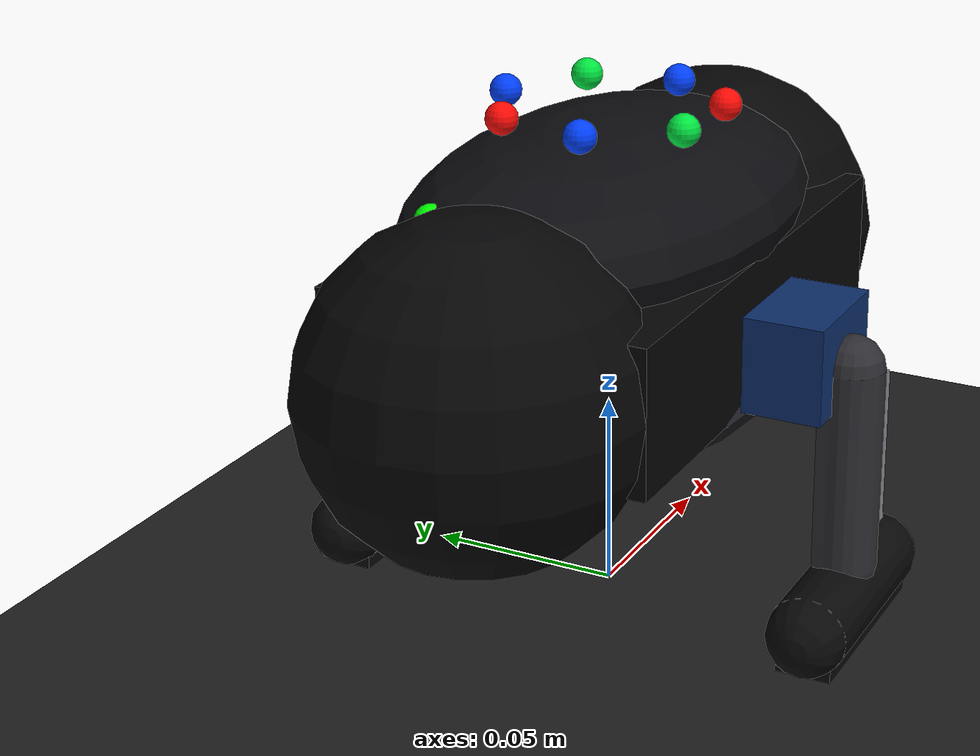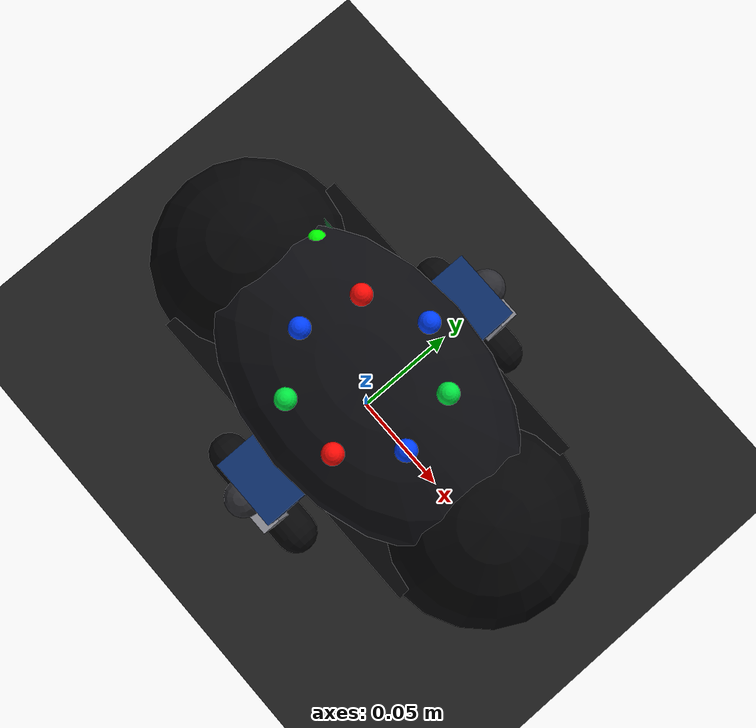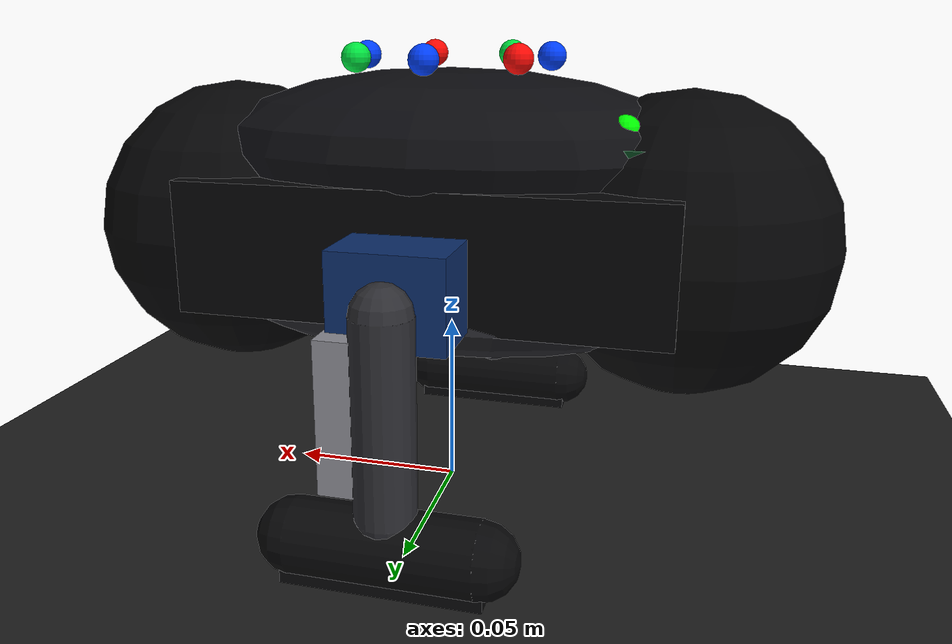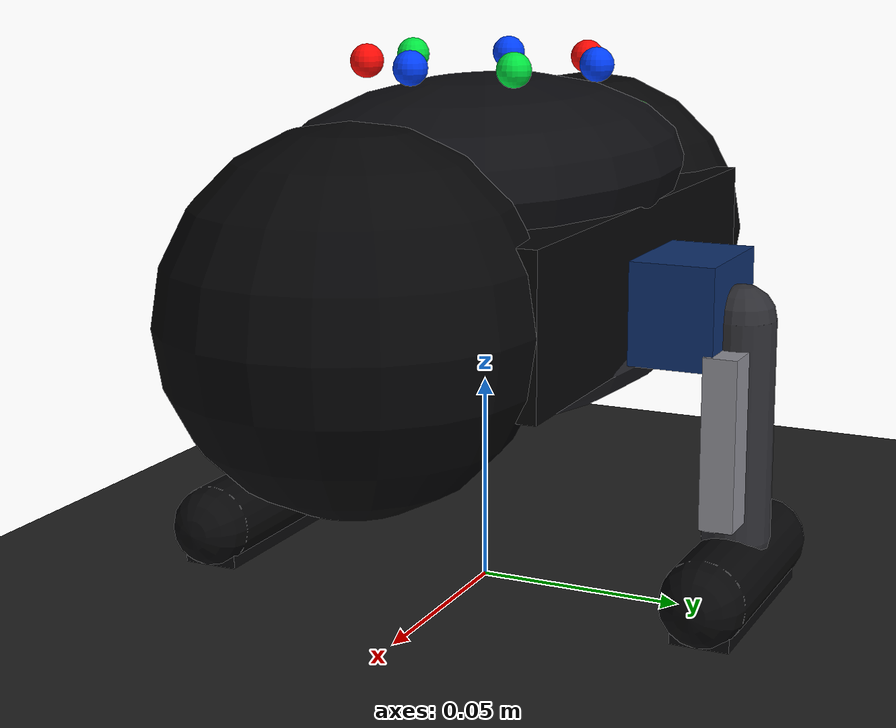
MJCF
<mujoco model="microbot_round_v0">
  <compiler angle="degree" coordinate="local" inertiafromgeom="true"/>

  <option timestep="0.002" gravity="0 0 -9.81" integrator="RK4">
    <flag contact="enable" energy="enable"/>
  </option>

  <size njmax="500" nconmax="100"/>

  <default>
    <geom
      contype="1"
      conaffinity="1"
      condim="3"
      friction="1.2 0.3 0.1"
      solref="0.02 1"
      solimp="0.8 0.8 0.01"
    />

    <joint
      damping="0.06"
      armature="0.003"
      limited="true"
    />

    <motor
      ctrllimited="true"
      ctrlrange="-1 1"
    />
  </default>

  <asset>
    <texture
      name="grid"
      type="2d"
      builtin="checker"
      rgb1="0.08 0.08 0.08"
      rgb2="0.16 0.16 0.16"
      width="512"
      height="512"
    />

    <material
      name="floor_mat"
      texture="grid"
      texrepeat="4 4"
      reflectance="0.15"
    />

    <material name="body_black" rgba="0.02 0.02 0.025 1"/>
    <material name="shell_dark" rgba="0.05 0.05 0.065 1"/>
    <material name="edge_soft" rgba="0.12 0.12 0.14 1"/>
    <material name="servo_blue" rgba="0.05 0.18 0.42 1"/>
    <material name="leg_gray" rgba="0.18 0.18 0.20 1"/>
    <material name="foot_rubber" rgba="0.03 0.03 0.035 1"/>
    <material name="camera_glass" rgba="0.02 0.04 0.08 1"/>
    <material name="led_blue" rgba="0.0 0.25 1.0 1"/>
    <material name="led_green" rgba="0.0 0.9 0.25 1"/>
    <material name="led_red" rgba="1.0 0.04 0.02 1"/>
    <material name="pcb_green" rgba="0.02 0.25 0.10 1"/>
    <material name="battery" rgba="0.18 0.18 0.22 1"/>
    <material name="speaker" rgba="0.01 0.01 0.01 1"/>
    <material name="metal" rgba="0.55 0.55 0.58 1"/>
  </asset>

  <worldbody>
    <light
      name="key_light"
      pos="0 -2 2"
      dir="0 1 -1"
      diffuse="0.8 0.8 0.8"
      specular="0.2 0.2 0.2"
    />

    <light
      name="fill_light"
      pos="2 1 1.5"
      dir="-1 -0.5 -1"
      diffuse="0.3 0.3 0.35"
      specular="0.1 0.1 0.1"
    />

    <geom
      name="floor"
      type="plane"
      size="2 2 0.02"
      material="floor_mat"
    />

    <!--
      Patched initial height:
      Old root Z was 0.105, which started the robot too high.
      New root Z is 0.078, so the feet begin close to the floor.
    -->
    <body name="microbot_root" pos="0 0 0.078">
      <freejoint name="root_freejoint"/>

      <!-- Main rounded body approximation -->
      <geom
        name="main_lower_shell"
        type="box"
        size="0.066 0.0415 0.018"
        pos="0 0 0"
        material="body_black"
        mass="0.090"
      />

      <geom
        name="front_rounding"
        type="sphere"
        size="0.0415"
        pos="0.066 0 0"
        material="body_black"
        mass="0.015"
      />

      <geom
        name="rear_rounding"
        type="sphere"
        size="0.0415"
        pos="-0.066 0 0"
        material="body_black"
        mass="0.015"
      />

      <geom
        name="top_shell"
        type="ellipsoid"
        size="0.070 0.044 0.022"
        pos="0 0 0.024"
        material="shell_dark"
        mass="0.030"
      />

      <geom
        name="bottom_shell"
        type="ellipsoid"
        size="0.070 0.044 0.014"
        pos="0 0 -0.018"
        material="edge_soft"
        mass="0.020"
      />

      <!-- Internal electronics blocks -->
      <geom
        name="raspberry_pi_zero_2w"
        type="box"
        size="0.032 0.016 0.003"
        pos="-0.020 0 0.016"
        material="pcb_green"
        mass="0.012"
      />

      <!--
        Battery lowered slightly and made a little heavier to lower center of mass.
      -->
      <geom
        name="battery_1s"
        type="box"
        size="0.030 0.018 0.009"
        pos="0.020 0 -0.010"
        material="battery"
        mass="0.040"
      />

      <geom
        name="imu_mpu6050"
        type="box"
        size="0.010 0.008 0.002"
        pos="-0.050 0.020 0.026"
        material="pcb_green"
        mass="0.002"
      />

      <geom
        name="boost_converter_mt3608"
        type="box"
        size="0.012 0.008 0.003"
        pos="0.046 -0.020 0.010"
        material="pcb_green"
        mass="0.004"
      />

      <geom
        name="charger_tp4056"
        type="box"
        size="0.014 0.009 0.003"
        pos="0.046 0.020 0.010"
        material="pcb_green"
        mass="0.004"
      />

      <!-- Camera module -->
      <body name="front_camera_module" pos="0.078 0 0.014">
        <geom
          name="camera_board"
          type="box"
          size="0.010 0.014 0.002"
          material="pcb_green"
          mass="0.003"
        />

        <geom
          name="camera_lens"
          type="cylinder"
          size="0.006 0.004"
          pos="0.004 0 0.003"
          euler="0 90 0"
          material="camera_glass"
          mass="0.002"
        />

        <camera
          name="front_camera"
          pos="0.012 0 0.004"
          euler="0 90 0"
          fovy="70"
        />
      </body>

      <!-- Speaker and microphone -->
      <geom
        name="speaker_disk"
        type="cylinder"
        size="0.014 0.003"
        pos="-0.050 0 0.030"
        euler="0 0 0"
        material="speaker"
        mass="0.005"
      />

      <geom
        name="microphone_inmp441"
        type="box"
        size="0.006 0.004 0.002"
        pos="0.000 0.032 0.025"
        material="pcb_green"
        mass="0.001"
      />

      <!-- LED ring visual markers on the top surface -->
      <body name="led_ring_visual" pos="0 0 0.049">
        <geom name="led_0" type="sphere" size="0.004" pos="0.000 0.028 0" material="led_blue" mass="0.0001"/>
        <geom name="led_1" type="sphere" size="0.004" pos="0.022 0.017 0" material="led_green" mass="0.0001"/>
        <geom name="led_2" type="sphere" size="0.004" pos="0.027 -0.006 0" material="led_blue" mass="0.0001"/>
        <geom name="led_3" type="sphere" size="0.004" pos="0.012 -0.025 0" material="led_red" mass="0.0001"/>
        <geom name="led_4" type="sphere" size="0.004" pos="-0.012 -0.025 0" material="led_green" mass="0.0001"/>
        <geom name="led_5" type="sphere" size="0.004" pos="-0.027 -0.006 0" material="led_blue" mass="0.0001"/>
        <geom name="led_6" type="sphere" size="0.004" pos="-0.022 0.017 0" material="led_red" mass="0.0001"/>
      </body>

      <!-- Left servo and leg -->
      <body name="left_servo_body" pos="0 0.052 -0.005">
        <geom
          name="left_servo_case"
          type="box"
          size="0.015 0.010 0.012"
          material="servo_blue"
          mass="0.009"
        />

        <body name="left_leg" pos="0 0.012 -0.002">
          <joint
            name="left_leg_hinge"
            type="hinge"
            axis="0 1 0"
            range="-35 35"
            damping="0.08"
          />

          <geom
            name="left_leg_link"
            type="capsule"
            fromto="0 0 0 0.000 0.000 -0.052"
            size="0.008"
            material="leg_gray"
            mass="0.012"
          />

          <geom
            name="left_leg_side_pad"
            type="box"
            size="0.006 0.004 0.020"
            pos="0.010 0.000 -0.026"
            material="metal"
            mass="0.002"
          />

          <body name="left_rounded_foot" pos="0 0 -0.060">
            <geom
              name="left_foot_capsule"
              type="capsule"
              fromto="-0.024 0 0 0.024 0 0"
              size="0.010"
              material="foot_rubber"
              mass="0.014"
              friction="1.5 0.35 0.12"
            />

            <geom
              name="left_foot_contact_pad"
              type="box"
              size="0.026 0.007 0.003"
              pos="0 0 -0.007"
              material="foot_rubber"
              mass="0.003"
              friction="1.5 0.35 0.12"
            />
          </body>
        </body>
      </body>

      <!-- Right servo and leg -->
      <body name="right_servo_body" pos="0 -0.052 -0.005">
        <geom
          name="right_servo_case"
          type="box"
          size="0.015 0.010 0.012"
          material="servo_blue"
          mass="0.009"
        />

        <body name="right_leg" pos="0 -0.012 -0.002">
          <joint
            name="right_leg_hinge"
            type="hinge"
            axis="0 1 0"
            range="-35 35"
            damping="0.08"
          />

          <geom
            name="right_leg_link"
            type="capsule"
            fromto="0 0 0 0.000 0.000 -0.052"
            size="0.008"
            material="leg_gray"
            mass="0.012"
          />

          <geom
            name="right_leg_side_pad"
            type="box"
            size="0.006 0.004 0.020"
            pos="0.010 0.000 -0.026"
            material="metal"
            mass="0.002"
          />

          <body name="right_rounded_foot" pos="0 0 -0.060">
            <geom
              name="right_foot_capsule"
              type="capsule"
              fromto="-0.024 0 0 0.024 0 0"
              size="0.010"
              material="foot_rubber"
              mass="0.014"
              friction="1.5 0.35 0.12"
            />

            <geom
              name="right_foot_contact_pad"
              type="box"
              size="0.026 0.007 0.003"
              pos="0 0 -0.007"
              material="foot_rubber"
              mass="0.003"
              friction="1.5 0.35 0.12"
            />
          </body>
        </body>
      </body>

      <!-- Sites for logging/debugging -->
      <site
        name="imu_site"
        pos="-0.050 0.020 0.032"
        size="0.004"
        rgba="0 1 0 1"
      />

      <site
        name="camera_site"
        pos="0.090 0 0.020"
        size="0.004"
        rgba="0 0.4 1 1"
      />

      <site
        name="center_of_mass_reference"
        pos="0 0 0"
        size="0.004"
        rgba="1 1 1 1"
      />
    </body>
  </worldbody>

  <actuator>
    <motor
      name="left_leg_motor"
      joint="left_leg_hinge"
      gear="0.08"
      ctrlrange="-1 1"
    />

    <motor
      name="right_leg_motor"
      joint="right_leg_hinge"
      gear="0.08"
      ctrlrange="-1 1"
    />
  </actuator>

  <sensor>
    <jointpos name="left_leg_angle" joint="left_leg_hinge"/>
    <jointpos name="right_leg_angle" joint="right_leg_hinge"/>

    <jointvel name="left_leg_velocity" joint="left_leg_hinge"/>
    <jointvel name="right_leg_velocity" joint="right_leg_hinge"/>

    <accelerometer name="body_accelerometer" site="imu_site"/>
    <gyro name="body_gyro" site="imu_site"/>
  </sensor>

  <keyframe>
    <key
      name="standing_idle"
      qpos="0 0 0.078 1 0 0 0 0 0"
      ctrl="0 0"
    />

    <key
      name="small_left_nudge"
      qpos="0 0 0.078 1 0 0 0 0.20 0"
      ctrl="0.25 0"
    />

    <key
      name="small_right_nudge"
      qpos="0 0 0.078 1 0 0 0 0 -0.20"
      ctrl="0 -0.25"
    />
  </keyframe>
</mujoco>
